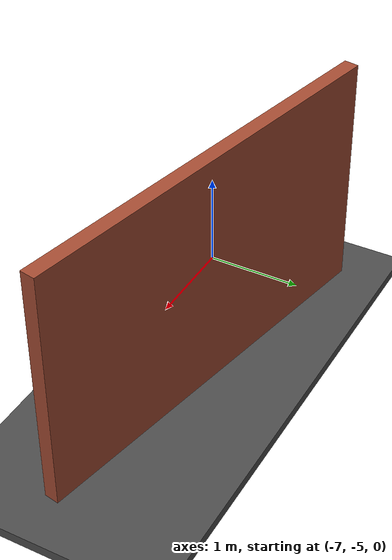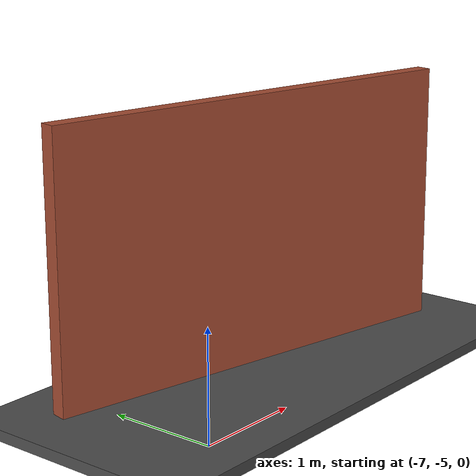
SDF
<sdf version="1.5">
 <world name="default">
  <model name="ground_plane">
   <static>1</static>
   <link name="link">
    <collision name="collision">
     <geometry><plane><normal>0 0 1</normal><size>100 100</size></plane></geometry>
     <surface><friction><ode><mu>100</mu><mu2>50</mu2></ode></friction></surface>
    </collision>
    <visual name="visual">
     <cast_shadows>0</cast_shadows>
     <geometry><plane><normal>0 0 1</normal><size>100 100</size></plane></geometry>
     <material>
      <script><uri>file://media/materials/scripts/gazebo.material</uri><name>Gazebo/Grey</name></script>
     </material>
    </visual>
    <velocity_decay><linear>0</linear><angular>0</angular></velocity_decay>
   </link>
  </model>
  <model name="asphalt_plane">
   <static>1</static>
   <link name="link">
    <collision name="collision"><geometry><box><size>20 20 0.1</size></box></geometry></collision>
    <visual name="visual">
     <cast_shadows>0</cast_shadows>
     <geometry><box><size>20 20 0.1</size></box></geometry>
     <material>
      <script>
       <uri>model://asphalt_plane/materials/scripts</uri>
       <uri>model://asphalt_plane/materials/textures</uri>
       <name>vrc/asphalt</name>
      </script>
     </material>
    </visual>
    <velocity_decay><linear>0</linear><angular>0</angular></velocity_decay>
   </link>
   <pose>0.076733 -0.110379 0 0 -0 0</pose>
  </model>
  <model name="worlds_1">
   <pose>-5.33178 -4.13324 0 0 -0 1.37871</pose>
   <link name="Wall_0">
    <collision name="Wall_0_Collision">
     <geometry><box><size>4.25 0.15 2.5</size></box></geometry>
     <pose>0 0 1.25 0 -0 0</pose>
    </collision>
    <visual name="Wall_0_Visual">
     <pose>0 0 1.25 0 -0 0</pose>
     <geometry><box><size>4.25 0.15 2.5</size></box></geometry>
     <material>
      <script><uri>file://media/materials/scripts/gazebo.material</uri><name>Gazebo/Bricks</name></script>
      <ambient>1 1 1 1</ambient>
     </material>
    </visual>
    <pose>0 -0 0 0 -0 1.5708</pose>
   </link>
   <static>1</static>
  </model>
 </world>
</sdf>
